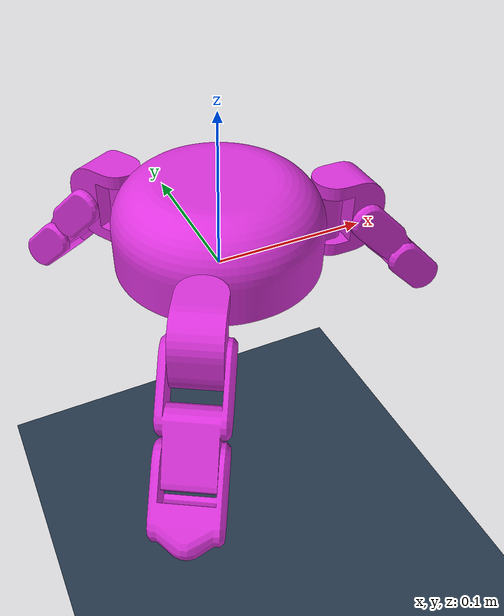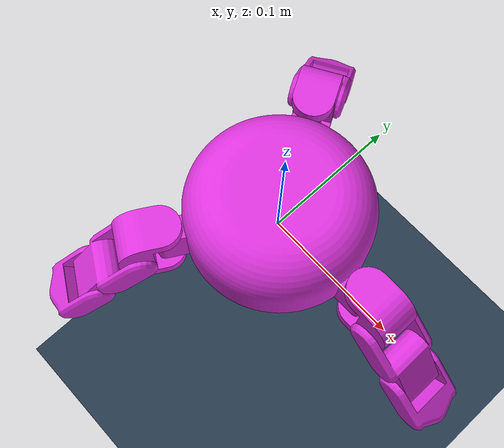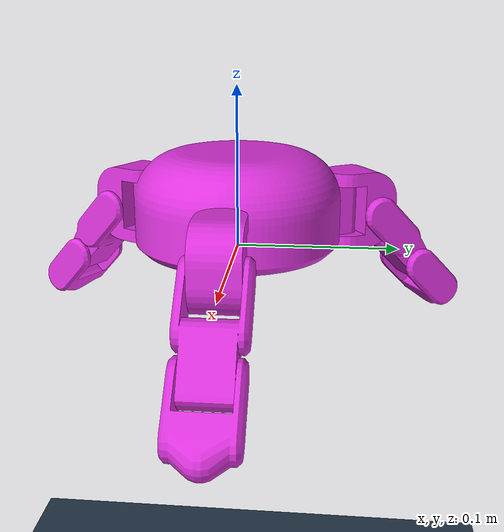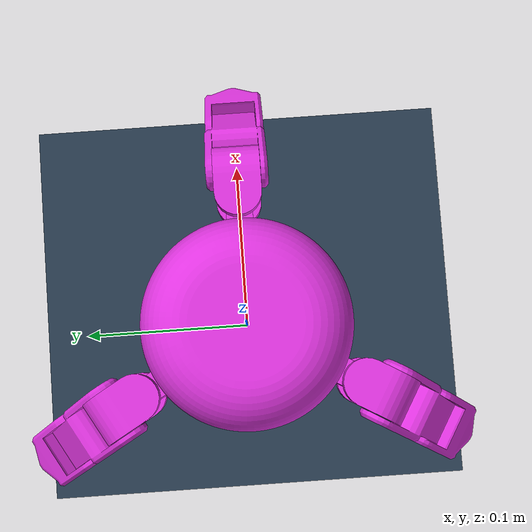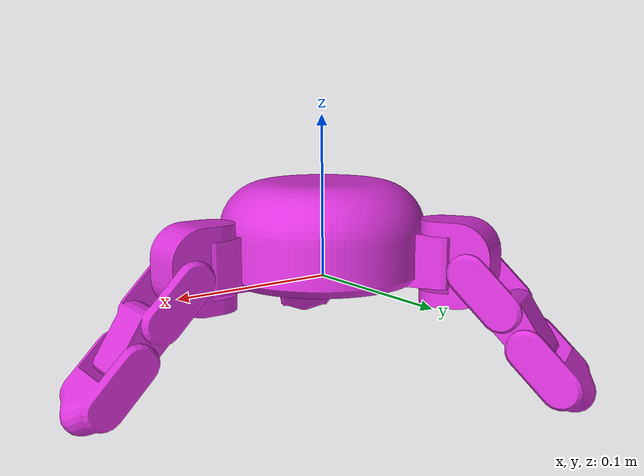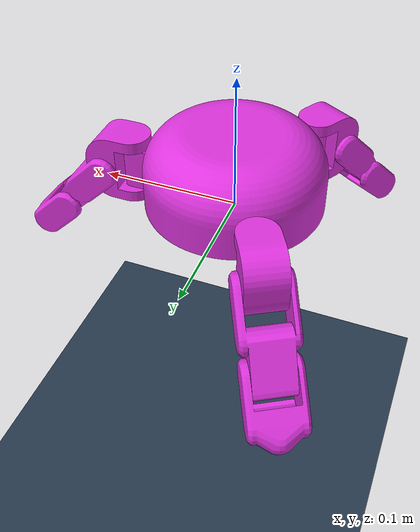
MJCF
<mujoco model="World">
  <option timestep="0.005" solver="CG" iterations="30" tolerance="1e-6"/>

  <size memory="20M"/>

  <visual>
    <map force="0.1" zfar="30"/>
    <rgba haze="0.15 0.25 0.35 1"/>
    <quality shadowsize="2048"/>
    <global offwidth="800" offheight="800"/>
  </visual>

  <asset>
    <texture type="skybox" builtin="gradient" rgb1="0.3 0.5 0.7" rgb2="0 0 0" width="512" height="512"/>
    <texture name="plane" type="2d" builtin="checker" rgb1=".2 .3 .4" rgb2=".1 0.15 0.2"
             width="512" height="512" mark="cross" markrgb=".8 .8 .8"/>
    <material name="plane" reflectance="0.3" texture="plane" texrepeat="1 1" texuniform="true"/>
  </asset>

  <include file="pet.xml"/>

  <worldbody>
    <geom name="floor" pos="0 0 -0.3" size="0 0 .25" type="plane" material="plane" condim="3"/>
    <light directional="true" diffuse=".2 .2 .2" specular="0 0 0" pos="0 0 5" dir="0 0 -1" castshadow="false"/>
    <light directional="false" diffuse=".8 .8 .8" specular="0.3 0.3 0.3" pos="0 0 4" dir="0 0 -1"/>
  </worldbody>
</mujoco>

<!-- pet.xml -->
<mujoco model="pet">

  <compiler assetdir="meshes" angle="degree"/>
  <size memory="5M"/>

  <visual>
    <map znear="0.1" zfar="1000 "/>
    <quality shadowsize="8192"/>
  </visual>

  <option timestep="0.005"/>

  <default>
      <default class="servo_joint">
          <joint type="hinge" damping="1.084" armature="0.045" frictionloss="0.03" limited="true"/>
      </default>
      <default class="servo_actuator">
        <position kp="21.1" ctrlrange="-1.570796 1.570796" forcerange="-5 5"/>
      </default>
      <default class="main_vis">
        <geom type="mesh"
              contype="0" conaffinity="0"
              group="0"/>
      </default>
      <default class="main_col">
          <geom type="mesh" solref=".004 1"
           contype="1" conaffinity="1"
           condim="1" friction=".7"
           group="2"/>
      </default>
  </default>
  <asset>
      <material name="white" rgba="1 1 1 1.0"/>
      <mesh file="part_hip3.stl"/>
      <mesh file="part_leg1.stl"/>
      <mesh file="part_leg2.stl"/>
      <mesh file="part_foot3.stl"/>
      <mesh file="part_foot1.stl"/>
      <mesh file="part_hip2.stl"/>
      <mesh file="part_leg3.stl"/>
      <mesh file="part_body.stl"/>
      <mesh file="part_hip1.stl"/>
      <mesh file="part_foot2.stl"/>
  </asset>
  <worldbody>
    <body name="part_body" pos="0.00000e+00 0.00000e+00 0.00000e+00" quat="1.00000e+00 0.00000e+00 0.00000e+00 0.00000e+00" >
      <inertial pos="5.79396e-09 1.98920e-06 2.71890e-02" mass="8.84935e-01" fullinertia="1.12349e-03 1.12448e-03 1.77485e-03 -7.90938e-13 -1.12084e-11 4.97264e-08"/>
      <site name="body_site" pos="0.00000e+00 0.00000e+00 0.00000e+00" quat="1.00000e+00 0.00000e+00 0.00000e+00 0.00000e+00" size="0.01" type="sphere" rgba="1 0 0 1"/>
      <freejoint/>
      <geom class="main_vis" mesh="part_body" rgba="0.8666666666666667 0.2 0.8666666666666667 1.0"/>
      <geom class="main_col" mesh="part_body"/>
      <body name="part_hip1" pos="7.00000e-02 0.00000e+00 -2.00000e-05" quat="7.07107e-01 0.00000e+00 0.00000e+00 7.07107e-01" >
        <inertial pos="2.27737e-10 -2.12332e-02 1.60500e-02" mass="4.63713e-02" fullinertia="1.59978e-05 1.38821e-05 8.15970e-06 1.80888e-13 2.90781e-13 -5.31862e-12"/>
        <geom class="main_vis" mesh="part_hip1" rgba="0.8666666666666667 0.2 0.8666666666666667 1.0"/>
        <geom class="main_col" mesh="part_hip1"/>
        <joint name="revolute_body_hip1_0_0_1" axis="0 0 1" range="-9.00000e+01 9.00000e+01" class="servo_joint"/>
        <body name="part_leg1" pos="-1.43950e-02 -2.44500e-02 1.05000e-02" quat="6.53281e-01 2.70598e-01 6.53281e-01 2.70598e-01" >
          <inertial pos="-1.57740e-03 -3.54868e-02 1.43500e-02" mass="4.05171e-02" fullinertia="1.90696e-05 6.76123e-06 1.51299e-05 8.47424e-07 8.42161e-13 9.15049e-12"/>
          <geom class="main_vis" mesh="part_leg1" rgba="0.8666666666666667 0.2 0.8666666666666667 1.0"/>
          <geom class="main_col" mesh="part_leg1"/>
          <joint name="revolute_hip1_leg1_0_0_1" axis="0 0 1" range="-9.00000e+01 9.00000e+01" class="servo_joint"/>
          <body name="part_foot1" pos="1.00000e-03 -5.30000e-02 4.98000e-03" quat="1.00000e+00 0.00000e+00 0.00000e+00 0.00000e+00" >
            <inertial pos="4.69992e-10 -2.50195e-02 9.25001e-03" mass="2.86678e-02" fullinertia="9.59267e-06 5.58672e-06 6.30519e-06 -2.21031e-13 1.90065e-13 -5.23918e-12"/>
            <geom class="main_vis" mesh="part_foot1" rgba="0.8666666666666667 0.2 0.8666666666666667 1.0"/>
            <geom class="main_col" mesh="part_foot1"/>
            <joint name="revolute_leg1_foot1_0_0_1" axis="0 0 1" range="-9.00000e+01 9.00000e+01" class="servo_joint"/>
          </body>
        </body>
      </body>
      <body name="part_hip2" pos="-3.50000e-02 6.06218e-02 -2.00000e-05" quat="2.58819e-01 0.00000e+00 0.00000e+00 -9.65926e-01" >
        <inertial pos="2.27737e-10 -2.12332e-02 1.60500e-02" mass="4.63713e-02" fullinertia="1.59978e-05 1.38821e-05 8.15970e-06 1.80888e-13 2.90781e-13 -5.31862e-12"/>
        <geom class="main_vis" mesh="part_hip2" rgba="0.8666666666666667 0.2 0.8666666666666667 1.0"/>
        <geom class="main_col" mesh="part_hip2"/>
        <joint name="revolute_body_hip2_0_0_1" axis="0 0 1" range="-9.00000e+01 9.00000e+01" class="servo_joint"/>
        <body name="part_leg2" pos="-1.43950e-02 -2.44500e-02 1.05000e-02" quat="6.53281e-01 2.70598e-01 6.53281e-01 2.70598e-01" >
          <inertial pos="-1.57740e-03 -3.54868e-02 1.43500e-02" mass="4.05171e-02" fullinertia="1.90696e-05 6.76123e-06 1.51299e-05 8.47424e-07 8.42161e-13 9.15049e-12"/>
          <geom class="main_vis" mesh="part_leg2" rgba="0.8666666666666667 0.2 0.8666666666666667 1.0"/>
          <geom class="main_col" mesh="part_leg2"/>
          <joint name="revolute_hip2_leg2_0_0_1" axis="0 0 1" range="-9.00000e+01 9.00000e+01" class="servo_joint"/>
          <body name="part_foot2" pos="1.00000e-03 -5.30000e-02 4.98000e-03" quat="1.00000e+00 -0.00000e+00 -0.00000e+00 -0.00000e+00" >
            <inertial pos="4.69992e-10 -2.50195e-02 9.25001e-03" mass="2.86678e-02" fullinertia="9.59267e-06 5.58672e-06 6.30519e-06 -2.21031e-13 1.90065e-13 -5.23918e-12"/>
            <geom class="main_vis" mesh="part_foot2" rgba="0.8666666666666667 0.2 0.8666666666666667 1.0"/>
            <geom class="main_col" mesh="part_foot2"/>
            <joint name="revolute_leg2_foot2_0_0_1" axis="0 0 1" range="-9.00000e+01 9.00000e+01" class="servo_joint"/>
          </body>
        </body>
      </body>
      <body name="part_hip3" pos="-3.50000e-02 -6.06218e-02 -2.00000e-05" quat="9.65926e-01 0.00000e+00 0.00000e+00 -2.58819e-01" >
        <inertial pos="2.27737e-10 -2.12332e-02 1.60500e-02" mass="4.63713e-02" fullinertia="1.59978e-05 1.38821e-05 8.15970e-06 1.80888e-13 2.90781e-13 -5.31862e-12"/>
        <geom class="main_vis" mesh="part_hip3" rgba="0.8666666666666667 0.2 0.8666666666666667 1.0"/>
        <geom class="main_col" mesh="part_hip3"/>
        <joint name="revolute_body_hip3_0_0_1" axis="0 0 1" range="-9.00000e+01 9.00000e+01" class="servo_joint"/>
        <body name="part_leg3" pos="-1.43950e-02 -2.44500e-02 1.05000e-02" quat="6.53281e-01 2.70598e-01 6.53281e-01 2.70598e-01" >
          <inertial pos="-1.57740e-03 -3.54868e-02 1.43500e-02" mass="4.05171e-02" fullinertia="1.90696e-05 6.76123e-06 1.51299e-05 8.47424e-07 8.42161e-13 9.15049e-12"/>
          <geom class="main_vis" mesh="part_leg3" rgba="0.8666666666666667 0.2 0.8666666666666667 1.0"/>
          <geom class="main_col" mesh="part_leg3"/>
          <joint name="revolute_hip3_leg3_0_0_1" axis="0 0 1" range="-9.00000e+01 9.00000e+01" class="servo_joint"/>
          <body name="part_foot3" pos="1.00000e-03 -5.30000e-02 4.98000e-03" quat="1.00000e+00 0.00000e+00 0.00000e+00 0.00000e+00" >
            <inertial pos="4.69992e-10 -2.50195e-02 9.25001e-03" mass="2.86678e-02" fullinertia="9.59267e-06 5.58672e-06 6.30519e-06 -2.21031e-13 1.90065e-13 -5.23918e-12"/>
            <geom class="main_vis" mesh="part_foot3" rgba="0.8666666666666667 0.2 0.8666666666666667 1.0"/>
            <geom class="main_col" mesh="part_foot3"/>
            <joint name="revolute_leg3_foot3_0_0_1" axis="0 0 1" range="-9.00000e+01 9.00000e+01" class="servo_joint"/>
          </body>
        </body>
      </body>
    </body>
  </worldbody>
  <sensor>
    <accelerometer name="body" site="body_site" />
    <gyro name="body_gyro" site="body_site" />
  </sensor>
  <actuator>
    <position joint="revolute_body_hip1_0_0_1" class="servo_actuator"/>
    <position joint="revolute_hip1_leg1_0_0_1" class="servo_actuator"/>
    <position joint="revolute_leg1_foot1_0_0_1" class="servo_actuator"/>
    <position joint="revolute_body_hip2_0_0_1" class="servo_actuator"/>
    <position joint="revolute_hip2_leg2_0_0_1" class="servo_actuator"/>
    <position joint="revolute_leg2_foot2_0_0_1" class="servo_actuator"/>
    <position joint="revolute_body_hip3_0_0_1" class="servo_actuator"/>
    <position joint="revolute_hip3_leg3_0_0_1" class="servo_actuator"/>
    <position joint="revolute_leg3_foot3_0_0_1" class="servo_actuator"/>
  </actuator>
</mujoco>
